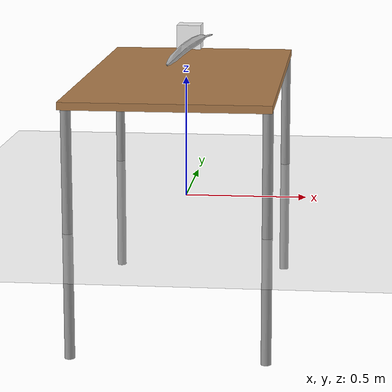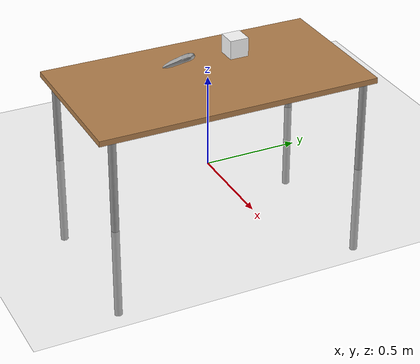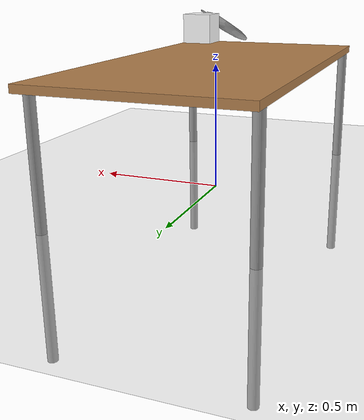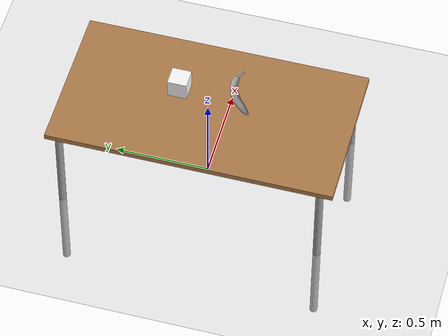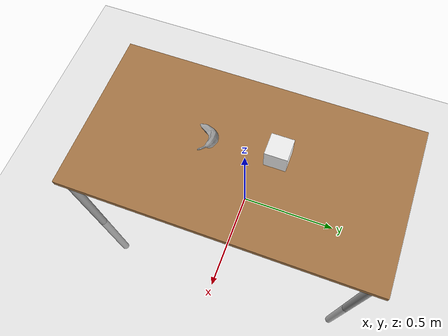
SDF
<sdf version="1.4">
 <world name="default">
  <include><uri>model://ground_plane</uri></include>
  <include><uri>model://sun</uri></include>
  <include><uri>model://table</uri><pose>0 0 -0.5 0 0 1.57</pose></include>
  <include><uri>model://wood_cube_10cm</uri><pose>0 0.15 0.6 0 0 0</pose></include>
  <model name="banana"><include><uri>model://banana</uri><pose>0 -0.15 0.53 0 0 0</pose></include></model>
 </world>
</sdf>

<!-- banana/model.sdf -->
<sdf version="1.5">
	<model name="OBJECT">
		<link name="Obj_3">
			<pose>0 0 0.1 2.2 -0.296705961227417 0.01745329052209854</pose>
			<inertial>
				<mass>0.8622732758522034</mass>
				<pose>0.03477764129638672 0.0029336530715227127 0.01468808762729168 2.1619239021219983e-07 1.229939812219527e-07 -1.3813895805014909e-07</pose>
				<inertia>
					<ixx>0.010104811936616898</ixx>
					<ixy>0.0</ixy>
					<ixz>0.0</ixz>
					<iyy>0.02979417145252228</iyy>
					<iyz>0.0</iyz>
					<izz>0.022718265652656555</izz>
				</inertia>
			</inertial>
			<collision name="VIS_Obj_3_Banana_Coll">
				<pose>-0.18325240910053253 -0.042692720890045166 -0.0038590345066040754 3.054346677799913e-07 5.162897664945376e-08 -1.8141007274152798e-07</pose>
				<geometry>
					<mesh>
						<uri>model://banana/meshes/collisions/COL_Obj_3_Banana_Coll.dae</uri>
						<scale>0.11999999731779099 0.11999999731779099 0.11999999731779099</scale>
					</mesh>
				</geometry>
			</collision>
			<visual name="VIS_Obj_3_Banana">
				<pose>-0.18325240910053253 -0.042692720890045166 -0.0038590345066040754 3.054346677799913e-07 5.162897664945376e-08 -1.8141007274152798e-07</pose>
				<geometry>
					<mesh>
						<uri>model://banana/meshes/visual/VIS_Obj_3_Banana.dae</uri>
						<scale>0.11999999731779099 0.11999999731779099 0.11999999731779099</scale>
					</mesh>
				</geometry>
			</visual>
		</link>
	</model>
</sdf>

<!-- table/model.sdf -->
<sdf version="1.5">
  <model name="table">
    <static>true</static>
    <link name="link">
      <collision name="surface">
        <pose>0 0 1.0 0 0 0</pose>
        <geometry>
          <box>
            <size>1.5 0.8 0.03</size>
          </box>
        </geometry>
        <surface>
          <friction>
            <ode>
              <mu>0.6</mu>
              <mu2>0.6</mu2>
            </ode>
          </friction>
        </surface>
      </collision>
      <visual name="visual1">
        <pose>0 0 1.0 0 0 0</pose>
        <geometry>
          <box>
            <size>1.5 0.8 0.03</size>
          </box>
        </geometry>
        <material>
          <script>
            <uri>model://media/materials/scripts/gazebo.material</uri>
            <name>Gazebo/Wood</name>
          </script>
        </material>
      </visual>
      <collision name="front_left_leg">
        <pose>0.68 0.38 0.5 0 0 0</pose>
        <geometry>
          <cylinder>
            <radius>0.02</radius>
            <length>1.0</length>
          </cylinder>
        </geometry>
      </collision>
      <visual name="front_left_leg">
        <pose>0.68 0.38 0.5 0 0 0</pose>
        <geometry>
          <cylinder>
            <radius>0.02</radius>
            <length>1.0</length>
          </cylinder>
        </geometry>
        <material>
          <script>
            <uri>model://media/materials/scripts/gazebo.material</uri>
            <name>Gazebo/Grey</name>
          </script>
        </material>
      </visual>
      <collision name="front_right_leg">
        <pose>0.68 -0.38 0.5 0 0 0</pose>
        <geometry>
          <cylinder>
            <radius>0.02</radius>
            <length>1.0</length>
          </cylinder>
        </geometry>
      </collision>
      <visual name="front_right_leg">
        <pose>0.68 -0.38 0.5 0 0 0</pose>
        <geometry>
          <cylinder>
            <radius>0.02</radius>
            <length>1.0</length>
          </cylinder>
        </geometry>
        <material>
          <script>
            <uri>model://media/materials/scripts/gazebo.material</uri>
            <name>Gazebo/Grey</name>
          </script>
        </material>
      </visual>
      <collision name="back_right_leg">
        <pose>-0.68 -0.38 0.5 0 0 0</pose>
        <geometry>
          <cylinder>
            <radius>0.02</radius>
            <length>1.0</length>
          </cylinder>
        </geometry>
      </collision>
      <visual name="back_right_leg">
        <pose>-0.68 -0.38 0.5 0 0 0</pose>
        <geometry>
          <cylinder>
            <radius>0.02</radius>
            <length>1.0</length>
          </cylinder>
        </geometry>
        <material>
          <script>
            <uri>model://media/materials/scripts/gazebo.material</uri>
            <name>Gazebo/Grey</name>
          </script>
        </material>
      </visual>
      <collision name="back_left_leg">
        <pose>-0.68 0.38 0.5 0 0 0</pose>
        <geometry>
          <cylinder>
            <radius>0.02</radius>
            <length>1.0</length>
          </cylinder>
        </geometry>
      </collision>
      <visual name="back_left_leg">
        <pose>-0.68 0.38 0.5 0 0 0</pose>
        <geometry>
          <cylinder>
            <radius>0.02</radius>
            <length>1.0</length>
          </cylinder>
        </geometry>
        <material>
          <script>
            <uri>model://media/materials/scripts/gazebo.material</uri>
            <name>Gazebo/Grey</name>
          </script>
        </material>
      </visual>
    </link>
  </model>
</sdf>

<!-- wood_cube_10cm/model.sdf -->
<sdf version="1.5">
  <model name="wood_cube_10cm">
    <link name="link">
      <pose>0 0 0.05 0 0 0</pose>
      <inertial>
        <mass>0.5167</mass>
        <inertia>
          <ixx>0.0008611666666666669</ixx>
          <ixy>0</ixy>
          <ixz>0</ixz>
          <iyy>0.0008611666666666669</iyy>
          <iyz>0</iyz>
          <izz>0.0008611666666666669</izz>
        </inertia>
      </inertial>

      <collision name="collision">
        <geometry>
          <box>
            <size>0.1 0.1 0.1</size>
          </box>
        </geometry>
        <surface>
          <contact>
            <!-- Red Pine coefficients for longitudinal axis of the wood
                 according to:
                 http://www.fpl.fs.fed.us/documnts/fplgtr/fplgtr113/ch04.pdf -->
            <poissons_ratio>0.347</poissons_ratio>
            <elastic_modulus>8.8e+09</elastic_modulus>
            <ode>
              <kp>100000</kp>
              <kd>100</kd>
              <max_vel>100.0</max_vel>
              <min_depth>0.001</min_depth>
            </ode>
          </contact>
          <friction>
            <torsional>
              <coefficient>1.0</coefficient>
              <use_patch_radius>0</use_patch_radius>
              <surface_radius>0.01</surface_radius>
            </torsional>
          </friction>
        </surface>
      </collision>

      <visual name="visual">
        <geometry>
          <box>
            <size>0.1 0.1 0.1</size>
          </box>
        </geometry>
        <material><diffuse>1 1 1 1</diffuse><specular>0.1 0.1 0.1 1</specular></material>
      </visual>

    </link>
  </model>
</sdf>
